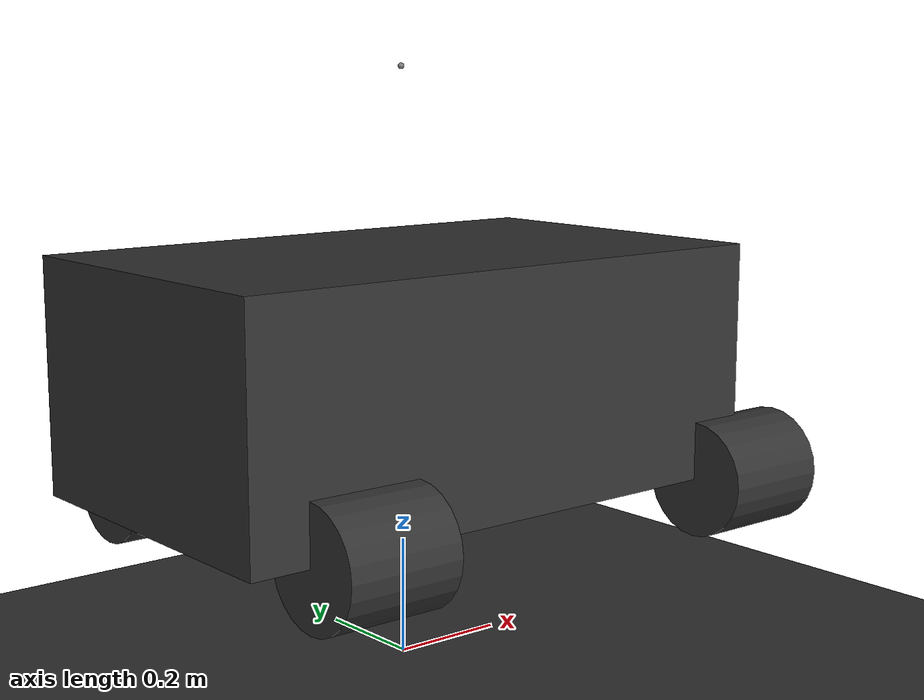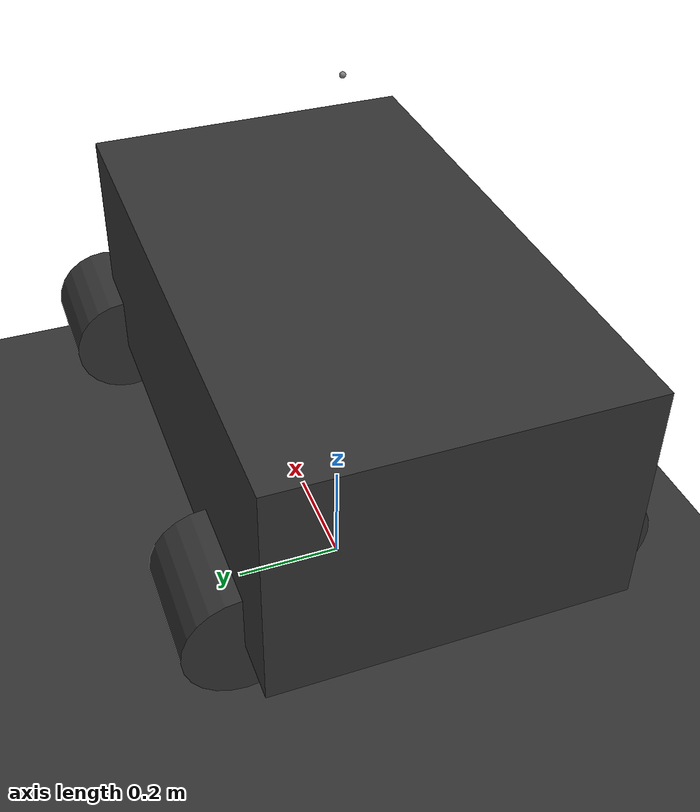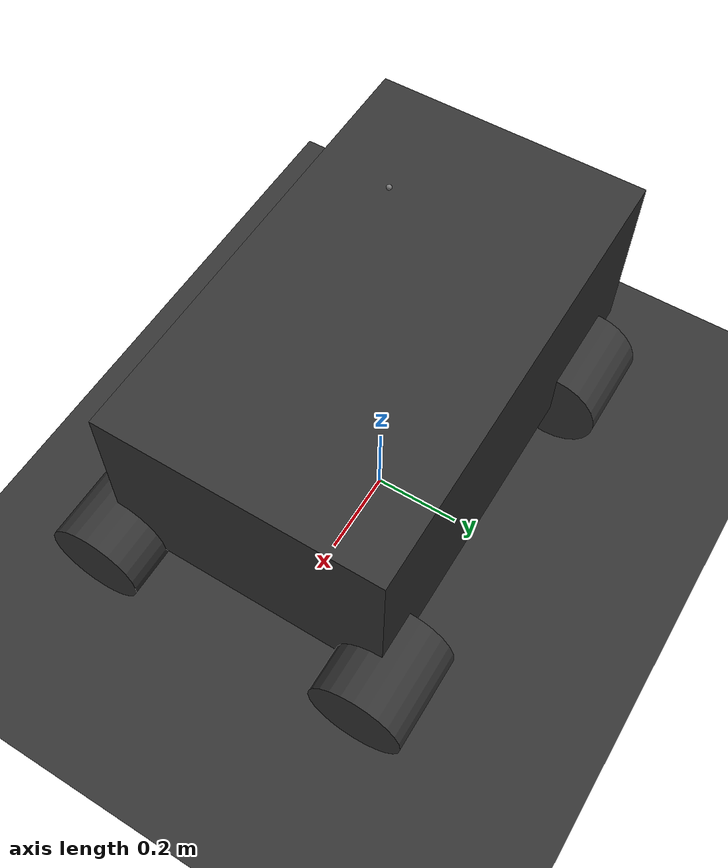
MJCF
<?xml version="1.0" encoding="utf-8"?>
<mujoco model="six_wheel_robot">
    <compiler angle="radian"/>
    <option timestep="0.002" integrator="implicitfast" iterations="50"/>
    <default>
        <geom conaffinity="1" condim="3" margin="0.05" material="black" rgba="0.2 0.2 0.2 1"/>
        <joint armature="0.01" damping="0.1" limited="true"/>
        <motor gear="100"/>
    </default>
    <asset>
        <material name="black" rgba="0.2 0.2 0.2 1"/>
        <material name="grid" rgba="0.8 0.8 0.8 1"/>
    </asset>
    <worldbody>
        <!-- Floor -->
        <geom name="floor" type="plane" size="5 5 0.1" material="grid"/>

        <!-- Main chassis -->
        <body name="chassis" pos="0 0 0.5">
            <geom name="chassis_body" type="box" size="0.5 0.3 0.2" material="black"/>
            <site name="com" pos="0 0 0.5"/>
        </body>

        <!-- Wheel configuration: 6 wheels in 3x2 arrangement -->
        <!-- Front left -->
        <body name="fl" pos="-0.4 0.3 0.3">
            <joint name="fl_hinge" type="hinge" axis="0 0 1" pos="0 0 0" range="-0.5 0.5"/>
            <geom name="fl_wheel" type="cylinder" size="0.1 0.2" material="black" fromto="0.2 0 0 0 0 0"/>
        </body>
        <body name="fr" pos="0.4 0.3 0.3">
            <joint name="fr_hinge" type="hinge" axis="0 0 1" pos="0 0 0" range="-0.5 0.5"/>
            <geom name="fr_wheel" type="cylinder" size="0.1 0.2" material="black" fromto="0.2 0 0 0 0 0"/>
        </body>
        <!-- Middle left -->
        <body name="ml" pos="-0.2 0 0.3">
            <joint name="ml_hinge" type="hinge" axis="0 0 1" pos="0 0 0" range="-0.5 0.5"/>
            <geom name="ml_wheel" type="cylinder" size="0.1 0.2" material="black" fromto="0.2 0 0 0 0 0"/>
        </body>
        <body name="mr" pos="0.2 0 0.3">
            <joint name="mr_hinge" type="hinge" axis="0 0 1" pos="0 0 0" range="-0.5 0.5"/>
            <geom name="mr_wheel" type="cylinder" size="0.1 0.2" material="black" fromto="0.2 0 0 0 0 0"/>
        </body>
        <!-- Rear left -->
        <body name="rl" pos="-0.4 -0.3 0.3">
            <joint name="rl_hinge" type="hinge" axis="0 0 1" pos="0 0 0" range="-0.5 0.5"/>
            <geom name="rl_wheel" type="cylinder" size="0.1 0.2" material="black" fromto="0.2 0 0 0 0 0"/>
        </body>
        <body name="rr" pos="0.4 -0.3 0.3">
            <joint name="rr_hinge" type="hinge" axis="0 0 1" pos="0 0 0" range="-0.5 0.5"/>
            <geom name="rr_wheel" type="cylinder" size="0.1 0.2" material="black" fromto="0.2 0 0 0 0 0"/>
        </body>
    </worldbody>
    <actuator>
        <motor name="fl_motor" joint="fl_hinge" gear="200"/>
        <motor name="fr_motor"  joint="fr_hinge"/>
        <motor name="ml_motor" joint="ml_hinge" gear="200"/>
        <motor name="mr_motor"  joint="mr_hinge"/>
        <motor name="rl_motor"  joint="rl_hinge"/>
        <motor name="rr_motor"  joint="rr_hinge"/>
    </actuator>
</mujoco>
